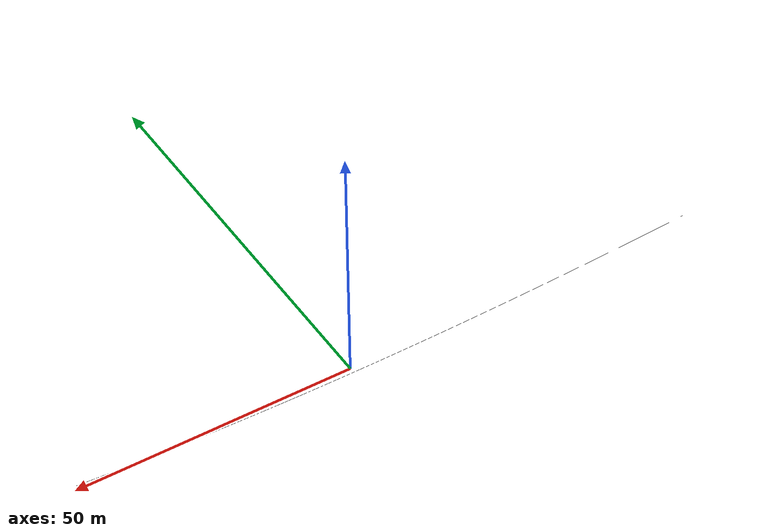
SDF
<?xml version="1.0" ?>

  <sdf version="1.5">
    <model name="tsd_electric_tower_line">
      <static>true</static>
      <link name='line'>
      <pose>0.0 -0.0 0.0 0 -0 0</pose>
      <inertial>
        <pose>0 0 0 0 -0 0</pose>
        <mass>0.025</mass>
        <inertia>
          <ixx>9.75e-06</ixx>
          <ixy>0</ixy>
          <ixz>0</ixz>
          <iyy>0.000166704</iyy>
          <iyz>0</iyz>
          <izz>0.000167604</izz>
        </inertia>
      </inertial>
      <collision name='line_collision'>
        <pose>0 0 0 0 -0 0</pose>
        <geometry>
          <mesh>
            <scale>1 1 1</scale>
            <uri>model://tsd_electric_tower_line/meshes/line.STL</uri>
          </mesh>
        </geometry>
        <surface>
          <contact>
            <ode />
          </contact>
          <friction>
            <ode />
          </friction>
        </surface>
      </collision>
      <visual name='line_visual'>
        <pose>0 0 0 0 -0 0</pose>
        <geometry>
          <mesh>
            <scale>1 1 1</scale>
            <uri>model://tsd_electric_tower_line/meshes/line.STL</uri>
          </mesh>
        </geometry>
        <material>
          <script>
            <uri>__default__</uri>
          </script>
        </material>
      </visual>
      <gravity>1</gravity>
      <velocity_decay />
      <self_collide>0</self_collide>
    </link>
  </model>
</sdf>
